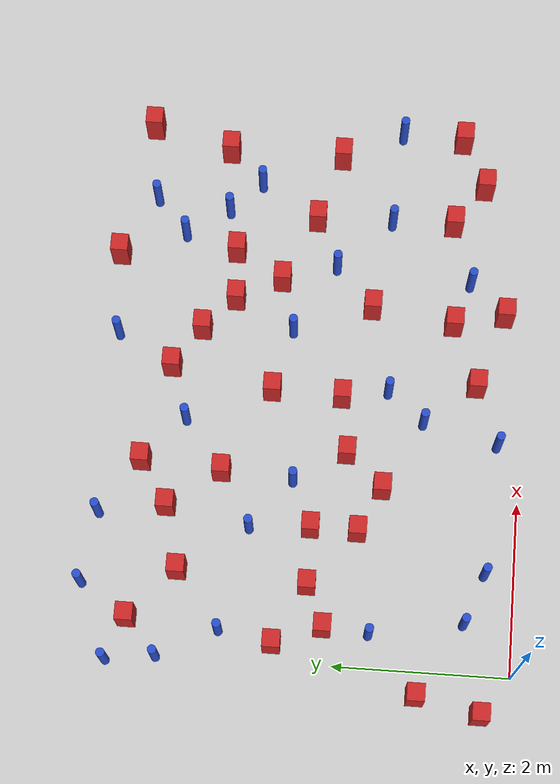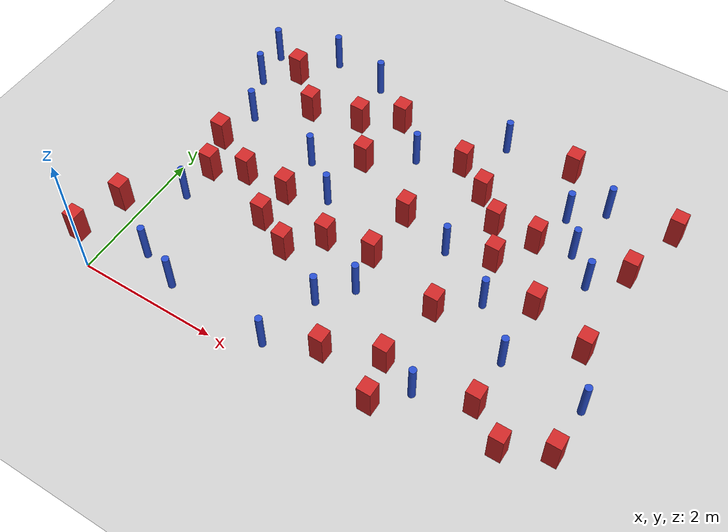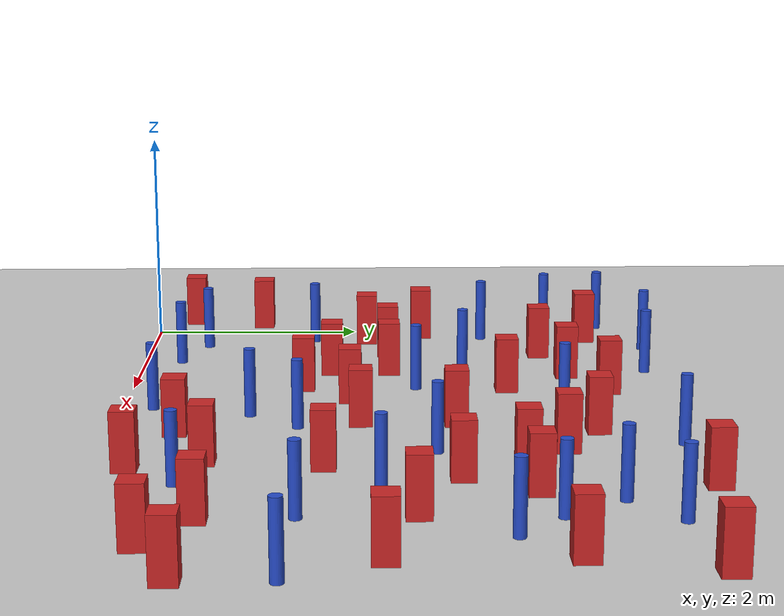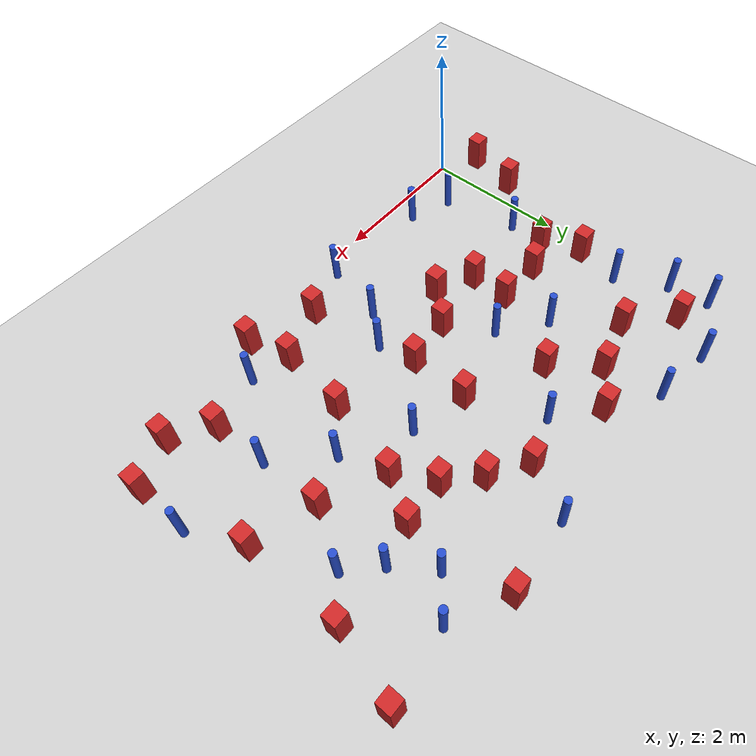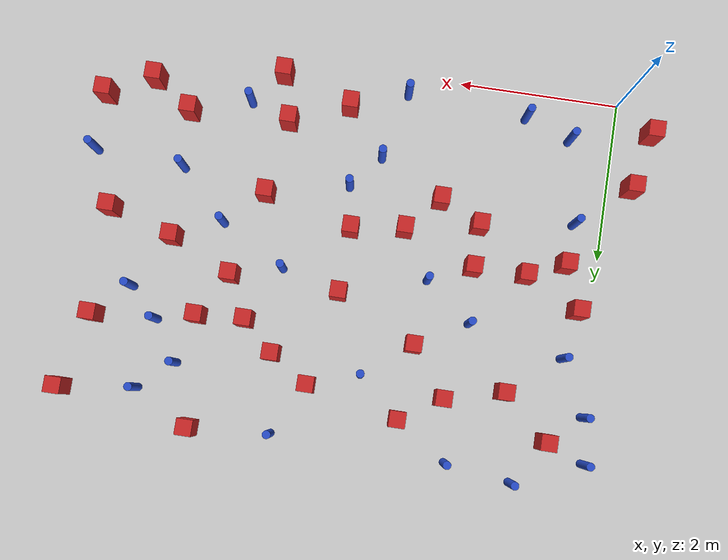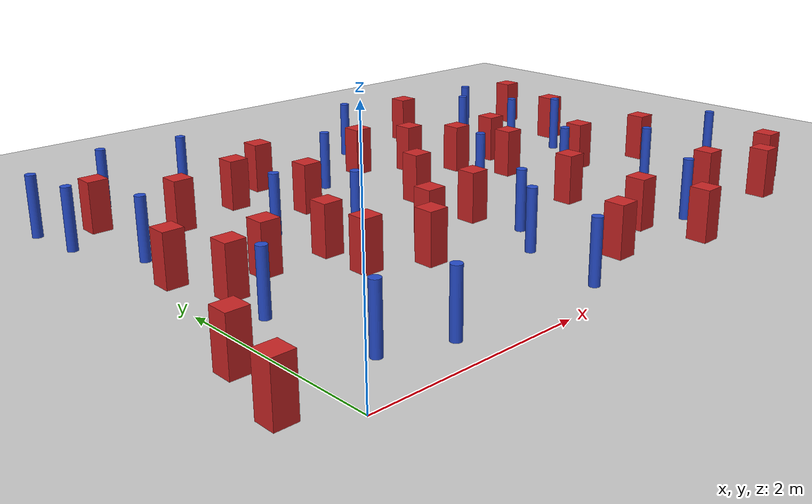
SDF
<sdf version="1.6">
 <world name="default">
  <model name="ground_plane">
   <static>1</static>
   <link name="link">
    <collision name="collision">
     <geometry><plane><normal>0 0 1</normal><size>100 100</size></plane></geometry>
     <surface><friction><ode><mu>100</mu><mu2>50</mu2></ode></friction></surface>
    </collision>
    <visual name="visual">
     <cast_shadows>0</cast_shadows>
     <geometry><plane><normal>0 0 1</normal><size>100 100</size></plane></geometry>
     <material>
      <ambient>1.0 1.0 1.0 1.0</ambient>
      <diffuse>0.8 0.8 0.8 1.0</diffuse>
      <specular>0.01 0.01 0.01 1.000000</specular>
     </material>
    </visual>
   </link>
  </model>
  <model name="square_post_obstacle5">
   <static>true</static>
   <pose>3.35381513687 4.06775234685 8.22691968438e-08 7.22125133819e-06 -7.54495500217e-07 2.29674213826e-05</pose>
   <link name="link">
    <pose>0 0 0.25 0 -0 0</pose>
    <inertial>
     <mass>100</mass>
     <inertia>
      <ixx>0.166667</ixx>
      <ixy>0</ixy>
      <ixz>0</ixz>
      <iyy>0.166667</iyy>
      <iyz>0</iyz>
      <izz>0.166667</izz>
     </inertia>
    </inertial>
    <collision name="collision"><geometry><box><size>.2 .2 .5</size></box></geometry></collision>
    <visual name="visual">
     <geometry><box><size>.2 .2 .5</size></box></geometry>
     <material>
      <script><name>Gazebo/Red</name><uri>file://media/materials/scripts/gazebo.material</uri></script>
     </material>
    </visual>
   </link>
  </model>
  <model name="pole_obstacle6">
   <static>true</static>
   <pose>1.13319620312 0.348081348117 2.88873142074e-08 -9.90536689733e-09 4.60219948992e-07 -1.20965994959e-07</pose>
   <link name="link">
    <pose>0 0 0.3 0 -0 0</pose>
    <inertial>
     <mass>1</mass>
     <inertia><ixx>0.145833</ixx><ixy>0</ixy><ixz>0</ixz><iyy>0.145833</iyy><iyz>0</iyz><izz>0.125</izz></inertia>
    </inertial>
    <collision name="collision">
     <geometry><cylinder><radius>0.05</radius><length>.6</length></cylinder></geometry>
    </collision>
    <visual name="visual">
     <geometry><cylinder><radius>0.05</radius><length>.6</length></cylinder></geometry>
     <material>
      <script><name>Gazebo/Blue</name><uri>file://media/materials/scripts/gazebo.material</uri></script>
     </material>
    </visual>
   </link>
  </model>
  <model name="square_post_obstacle9">
   <static>true</static>
   <pose>2.0536290855 1.55828655313 8.22691968438e-08 7.2212513382e-06 -7.54495500217e-07 2.29674213826e-05</pose>
   <link name="link">
    <pose>0 0 0.25 0 -0 0</pose>
    <inertial>
     <mass>100</mass>
     <inertia>
      <ixx>0.166667</ixx>
      <ixy>0</ixy>
      <ixz>0</ixz>
      <iyy>0.166667</iyy>
      <iyz>0</iyz>
      <izz>0.166667</izz>
     </inertia>
    </inertial>
    <collision name="collision"><geometry><box><size>.2 .2 .5</size></box></geometry></collision>
    <visual name="visual">
     <geometry><box><size>.2 .2 .5</size></box></geometry>
     <material>
      <script><name>Gazebo/Red</name><uri>file://media/materials/scripts/gazebo.material</uri></script>
     </material>
    </visual>
   </link>
  </model>
  <model name="square_post_obstacle15">
   <static>true</static>
   <pose>5.32238337618 0.8916731845 8.22691968438e-08 7.2212513382e-06 -7.54495500217e-07 2.29674213826e-05</pose>
   <link name="link">
    <pose>0 0 0.25 0 -0 0</pose>
    <inertial>
     <mass>100</mass>
     <inertia>
      <ixx>0.166667</ixx>
      <ixy>0</ixy>
      <ixz>0</ixz>
      <iyy>0.166667</iyy>
      <iyz>0</iyz>
      <izz>0.166667</izz>
     </inertia>
    </inertial>
    <collision name="collision"><geometry><box><size>.2 .2 .5</size></box></geometry></collision>
    <visual name="visual">
     <geometry><box><size>.2 .2 .5</size></box></geometry>
     <material>
      <script><name>Gazebo/Red</name><uri>file://media/materials/scripts/gazebo.material</uri></script>
     </material>
    </visual>
   </link>
  </model>
  <model name="pole_obstacle9">
   <static>true</static>
   <pose>6.42302813318 1.54928854973 2.88873142074e-08 -9.90536689445e-09 4.60219948999e-07 -1.20965994956e-07</pose>
   <link name="link">
    <pose>0 0 0.3 0 -0 0</pose>
    <inertial>
     <mass>1</mass>
     <inertia><ixx>0.145833</ixx><ixy>0</ixy><ixz>0</ixz><iyy>0.145833</iyy><iyz>0</iyz><izz>0.125</izz></inertia>
    </inertial>
    <collision name="collision">
     <geometry><cylinder><radius>0.05</radius><length>.6</length></cylinder></geometry>
    </collision>
    <visual name="visual">
     <geometry><cylinder><radius>0.05</radius><length>.6</length></cylinder></geometry>
     <material>
      <script><name>Gazebo/Blue</name><uri>file://media/materials/scripts/gazebo.material</uri></script>
     </material>
    </visual>
   </link>
  </model>
  <model name="square_post_obstacle20">
   <static>true</static>
   <pose>4.81783541929 3.42962507963 8.22691968438e-08 7.2212513382e-06 -7.54495500217e-07 2.29674213826e-05</pose>
   <link name="link">
    <pose>0 0 0.25 0 -0 0</pose>
    <inertial>
     <mass>100</mass>
     <inertia>
      <ixx>0.166667</ixx>
      <ixy>0</ixy>
      <ixz>0</ixz>
      <iyy>0.166667</iyy>
      <iyz>0</iyz>
      <izz>0.166667</izz>
     </inertia>
    </inertial>
    <collision name="collision"><geometry><box><size>.2 .2 .5</size></box></geometry></collision>
    <visual name="visual">
     <geometry><box><size>.2 .2 .5</size></box></geometry>
     <material>
      <script><name>Gazebo/Red</name><uri>file://media/materials/scripts/gazebo.material</uri></script>
     </material>
    </visual>
   </link>
  </model>
  <model name="pole_obstacle24">
   <static>true</static>
   <pose>5.4136950931 4.41460487003 2.88873142074e-08 -9.90536690842e-09 4.60219948965e-07 -1.20965994976e-07</pose>
   <link name="link">
    <pose>0 0 0.3 0 -0 0</pose>
    <inertial>
     <mass>1</mass>
     <inertia><ixx>0.145833</ixx><ixy>0</ixy><ixz>0</ixz><iyy>0.145833</iyy><iyz>0</iyz><izz>0.125</izz></inertia>
    </inertial>
    <collision name="collision">
     <geometry><cylinder><radius>0.05</radius><length>.6</length></cylinder></geometry>
    </collision>
    <visual name="visual">
     <geometry><cylinder><radius>0.05</radius><length>.6</length></cylinder></geometry>
     <material>
      <script><name>Gazebo/Blue</name><uri>file://media/materials/scripts/gazebo.material</uri></script>
     </material>
    </visual>
   </link>
  </model>
  <model name="square_post_obstacle33">
   <static>true</static>
   <pose>0.199342462068 2.68092679522 8.22691968438e-08 7.2212513382e-06 -7.54495500217e-07 2.29674213826e-05</pose>
   <link name="link">
    <pose>0 0 0.25 0 -0 0</pose>
    <inertial>
     <mass>100</mass>
     <inertia>
      <ixx>0.166667</ixx>
      <ixy>0</ixy>
      <ixz>0</ixz>
      <iyy>0.166667</iyy>
      <iyz>0</iyz>
      <izz>0.166667</izz>
     </inertia>
    </inertial>
    <collision name="collision"><geometry><box><size>.2 .2 .5</size></box></geometry></collision>
    <visual name="visual">
     <geometry><box><size>.2 .2 .5</size></box></geometry>
     <material>
      <script><name>Gazebo/Red</name><uri>file://media/materials/scripts/gazebo.material</uri></script>
     </material>
    </visual>
   </link>
  </model>
  <model name="pole_obstacle43">
   <static>true</static>
   <pose>-0.10576044568 4.52329469526 2.88873142074e-08 -9.90536689804e-09 4.6021994899e-07 -1.2096599496e-07</pose>
   <link name="link">
    <pose>0 0 0.3 0 -0 0</pose>
    <inertial>
     <mass>1</mass>
     <inertia><ixx>0.145833</ixx><ixy>0</ixy><ixz>0</ixz><iyy>0.145833</iyy><iyz>0</iyz><izz>0.125</izz></inertia>
    </inertial>
    <collision name="collision">
     <geometry><cylinder><radius>0.05</radius><length>.6</length></cylinder></geometry>
    </collision>
    <visual name="visual">
     <geometry><cylinder><radius>0.05</radius><length>.6</length></cylinder></geometry>
     <material>
      <script><name>Gazebo/Blue</name><uri>file://media/materials/scripts/gazebo.material</uri></script>
     </material>
    </visual>
   </link>
  </model>
  <model name="square_post_obstacle47">
   <static>true</static>
   <pose>4.2245207431 0.24566371275 8.22691968438e-08 7.2212513382e-06 -7.54495500217e-07 2.29674213826e-05</pose>
   <link name="link">
    <pose>0 0 0.25 0 -0 0</pose>
    <inertial>
     <mass>100</mass>
     <inertia>
      <ixx>0.166667</ixx>
      <ixy>0</ixy>
      <ixz>0</ixz>
      <iyy>0.166667</iyy>
      <iyz>0</iyz>
      <izz>0.166667</izz>
     </inertia>
    </inertial>
    <collision name="collision"><geometry><box><size>.2 .2 .5</size></box></geometry></collision>
    <visual name="visual">
     <geometry><box><size>.2 .2 .5</size></box></geometry>
     <material>
      <script><name>Gazebo/Red</name><uri>file://media/materials/scripts/gazebo.material</uri></script>
     </material>
    </visual>
   </link>
  </model>
  <model name="square_post_obstacle48">
   <static>true</static>
   <pose>-0.275603188666 1.05925205157 8.22691968438e-08 7.2212513382e-06 -7.54495500217e-07 2.29674213826e-05</pose>
   <link name="link">
    <pose>0 0 0.25 0 -0 0</pose>
    <inertial>
     <mass>100</mass>
     <inertia>
      <ixx>0.166667</ixx>
      <ixy>0</ixy>
      <ixz>0</ixz>
      <iyy>0.166667</iyy>
      <iyz>0</iyz>
      <izz>0.166667</izz>
     </inertia>
    </inertial>
    <collision name="collision"><geometry><box><size>.2 .2 .5</size></box></geometry></collision>
    <visual name="visual">
     <geometry><box><size>.2 .2 .5</size></box></geometry>
     <material>
      <script><name>Gazebo/Red</name><uri>file://media/materials/scripts/gazebo.material</uri></script>
     </material>
    </visual>
   </link>
  </model>
  <model name="square_post_obstacle62">
   <static>true</static>
   <pose>0.417937570312 2.13169467309 8.22691968438e-08 7.22125133819e-06 -7.54495500217e-07 2.29674213826e-05</pose>
   <link name="link">
    <pose>0 0 0.25 0 -0 0</pose>
    <inertial>
     <mass>100</mass>
     <inertia>
      <ixx>0.166667</ixx>
      <ixy>0</ixy>
      <ixz>0</ixz>
      <iyy>0.166667</iyy>
      <iyz>0</iyz>
      <izz>0.166667</izz>
     </inertia>
    </inertial>
    <collision name="collision"><geometry><box><size>.2 .2 .5</size></box></geometry></collision>
    <visual name="visual">
     <geometry><box><size>.2 .2 .5</size></box></geometry>
     <material>
      <script><name>Gazebo/Red</name><uri>file://media/materials/scripts/gazebo.material</uri></script>
     </material>
    </visual>
   </link>
  </model>
  <model name="pole_obstacle62">
   <static>true</static>
   <pose>2.8563226015 1.12617511428 2.88873142074e-08 -9.90536689395e-09 4.60219949e-07 -1.20965994953e-07</pose>
   <link name="link">
    <pose>0 0 0.3 0 -0 0</pose>
    <inertial>
     <mass>1</mass>
     <inertia><ixx>0.145833</ixx><ixy>0</ixy><ixz>0</ixz><iyy>0.145833</iyy><iyz>0</iyz><izz>0.125</izz></inertia>
    </inertial>
    <collision name="collision">
     <geometry><cylinder><radius>0.05</radius><length>.6</length></cylinder></geometry>
    </collision>
    <visual name="visual">
     <geometry><cylinder><radius>0.05</radius><length>.6</length></cylinder></geometry>
     <material>
      <script><name>Gazebo/Blue</name><uri>file://media/materials/scripts/gazebo.material</uri></script>
     </material>
    </visual>
   </link>
  </model>
  <model name="pole_obstacle64">
   <static>true</static>
   <pose>4.58681860581 0.659912806911 2.88873142074e-08 -9.90536689837e-09 4.60219948989e-07 -1.2096599496e-07</pose>
   <link name="link">
    <pose>0 0 0.3 0 -0 0</pose>
    <inertial>
     <mass>1</mass>
     <inertia><ixx>0.145833</ixx><ixy>0</ixy><ixz>0</ixz><iyy>0.145833</iyy><iyz>0</iyz><izz>0.125</izz></inertia>
    </inertial>
    <collision name="collision">
     <geometry><cylinder><radius>0.05</radius><length>.6</length></cylinder></geometry>
    </collision>
    <visual name="visual">
     <geometry><cylinder><radius>0.05</radius><length>.6</length></cylinder></geometry>
     <material>
      <script><name>Gazebo/Blue</name><uri>file://media/materials/scripts/gazebo.material</uri></script>
     </material>
    </visual>
   </link>
  </model>
  <model name="pole_obstacle65">
   <static>true</static>
   <pose>4.69014300524 2.23821791497 2.88873142074e-08 -9.90536690245e-09 4.6021994898e-07 -1.20965994966e-07</pose>
   <link name="link">
    <pose>0 0 0.3 0 -0 0</pose>
    <inertial>
     <mass>1</mass>
     <inertia><ixx>0.145833</ixx><ixy>0</ixy><ixz>0</ixz><iyy>0.145833</iyy><iyz>0</iyz><izz>0.125</izz></inertia>
    </inertial>
    <collision name="collision">
     <geometry><cylinder><radius>0.05</radius><length>.6</length></cylinder></geometry>
    </collision>
    <visual name="visual">
     <geometry><cylinder><radius>0.05</radius><length>.6</length></cylinder></geometry>
     <material>
      <script><name>Gazebo/Blue</name><uri>file://media/materials/scripts/gazebo.material</uri></script>
     </material>
    </visual>
   </link>
  </model>
  <model name="square_post_obstacle68">
   <static>true</static>
   <pose>4.07500601665 0.836255572172 8.22691968438e-08 7.2212513382e-06 -7.54495500217e-07 2.29674213826e-05</pose>
   <link name="link">
    <pose>0 0 0.25 0 -0 0</pose>
    <inertial>
     <mass>100</mass>
     <inertia>
      <ixx>0.166667</ixx>
      <ixy>0</ixy>
      <ixz>0</ixz>
      <iyy>0.166667</iyy>
      <iyz>0</iyz>
      <izz>0.166667</izz>
     </inertia>
    </inertial>
    <collision name="collision"><geometry><box><size>.2 .2 .5</size></box></geometry></collision>
    <visual name="visual">
     <geometry><box><size>.2 .2 .5</size></box></geometry>
     <material>
      <script><name>Gazebo/Red</name><uri>file://media/materials/scripts/gazebo.material</uri></script>
     </material>
    </visual>
   </link>
  </model>
  <model name="pole_obstacle69">
   <static>true</static>
   <pose>2.07374198753 2.57670208265 2.88873142074e-08 -9.90536690232e-09 4.6021994898e-07 -1.20965994968e-07</pose>
   <link name="link">
    <pose>0 0 0.3 0 -0 0</pose>
    <inertial>
     <mass>1</mass>
     <inertia><ixx>0.145833</ixx><ixy>0</ixy><ixz>0</ixz><iyy>0.145833</iyy><iyz>0</iyz><izz>0.125</izz></inertia>
    </inertial>
    <collision name="collision">
     <geometry><cylinder><radius>0.05</radius><length>.6</length></cylinder></geometry>
    </collision>
    <visual name="visual">
     <geometry><cylinder><radius>0.05</radius><length>.6</length></cylinder></geometry>
     <material>
      <script><name>Gazebo/Blue</name><uri>file://media/materials/scripts/gazebo.material</uri></script>
     </material>
    </visual>
   </link>
  </model>
  <model name="square_post_obstacle76">
   <static>true</static>
   <pose>0.384983445926 4.32455251216 8.22691968438e-08 7.22125133819e-06 -7.54495500217e-07 2.29674213826e-05</pose>
   <link name="link">
    <pose>0 0 0.25 0 -0 0</pose>
    <inertial>
     <mass>100</mass>
     <inertia>
      <ixx>0.166667</ixx>
      <ixy>0</ixy>
      <ixz>0</ixz>
      <iyy>0.166667</iyy>
      <iyz>0</iyz>
      <izz>0.166667</izz>
     </inertia>
    </inertial>
    <collision name="collision"><geometry><box><size>.2 .2 .5</size></box></geometry></collision>
    <visual name="visual">
     <geometry><box><size>.2 .2 .5</size></box></geometry>
     <material>
      <script><name>Gazebo/Red</name><uri>file://media/materials/scripts/gazebo.material</uri></script>
     </material>
    </visual>
   </link>
  </model>
  <model name="pole_obstacle80">
   <static>true</static>
   <pose>0.30487829085 3.28983109692 2.88873142074e-08 -9.90536689663e-09 4.60219948993e-07 -1.20965994959e-07</pose>
   <link name="link">
    <pose>0 0 0.3 0 -0 0</pose>
    <inertial>
     <mass>1</mass>
     <inertia><ixx>0.145833</ixx><ixy>0</ixy><ixz>0</ixz><iyy>0.145833</iyy><iyz>0</iyz><izz>0.125</izz></inertia>
    </inertial>
    <collision name="collision">
     <geometry><cylinder><radius>0.05</radius><length>.6</length></cylinder></geometry>
    </collision>
    <visual name="visual">
     <geometry><cylinder><radius>0.05</radius><length>.6</length></cylinder></geometry>
     <material>
      <script><name>Gazebo/Blue</name><uri>file://media/materials/scripts/gazebo.material</uri></script>
     </material>
    </visual>
   </link>
  </model>
  <model name="pole_obstacle85">
   <static>true</static>
   <pose>1.4938314433 3.03403903891 2.88873142074e-08 -9.90536689791e-09 4.6021994899e-07 -1.20965994959e-07</pose>
   <link name="link">
    <pose>0 0 0.3 0 -0 0</pose>
    <inertial>
     <mass>1</mass>
     <inertia><ixx>0.145833</ixx><ixy>0</ixy><ixz>0</ixz><iyy>0.145833</iyy><iyz>0</iyz><izz>0.125</izz></inertia>
    </inertial>
    <collision name="collision">
     <geometry><cylinder><radius>0.05</radius><length>.6</length></cylinder></geometry>
    </collision>
    <visual name="visual">
     <geometry><cylinder><radius>0.05</radius><length>.6</length></cylinder></geometry>
     <material>
      <script><name>Gazebo/Blue</name><uri>file://media/materials/scripts/gazebo.material</uri></script>
     </material>
    </visual>
   </link>
  </model>
  <model name="pole_obstacle93">
   <static>true</static>
   <pose>2.72200615313 3.85356774426 2.88873142074e-08 -9.90536690232e-09 4.6021994898e-07 -1.20965994968e-07</pose>
   <link name="link">
    <pose>0 0 0.3 0 -0 0</pose>
    <inertial>
     <mass>1</mass>
     <inertia><ixx>0.145833</ixx><ixy>0</ixy><ixz>0</ixz><iyy>0.145833</iyy><iyz>0</iyz><izz>0.125</izz></inertia>
    </inertial>
    <collision name="collision">
     <geometry><cylinder><radius>0.05</radius><length>.6</length></cylinder></geometry>
    </collision>
    <visual name="visual">
     <geometry><cylinder><radius>0.05</radius><length>.6</length></cylinder></geometry>
     <material>
      <script><name>Gazebo/Blue</name><uri>file://media/materials/scripts/gazebo.material</uri></script>
     </material>
    </visual>
   </link>
  </model>
  <model name="square_post_obstacle87">
   <static>true</static>
   <pose>3.3423848403 0.536654275949 8.22691968438e-08 7.2212513382e-06 -7.54495500217e-07 2.29674213826e-05</pose>
   <link name="link">
    <pose>0 0 0.25 0 -0 0</pose>
    <inertial>
     <mass>100</mass>
     <inertia>
      <ixx>0.166667</ixx>
      <ixy>0</ixy>
      <ixz>0</ixz>
      <iyy>0.166667</iyy>
      <iyz>0</iyz>
      <izz>0.166667</izz>
     </inertia>
    </inertial>
    <collision name="collision"><geometry><box><size>.2 .2 .5</size></box></geometry></collision>
    <visual name="visual">
     <geometry><box><size>.2 .2 .5</size></box></geometry>
     <material>
      <script><name>Gazebo/Red</name><uri>file://media/materials/scripts/gazebo.material</uri></script>
     </material>
    </visual>
   </link>
  </model>
  <model name="square_post_obstacle90">
   <static>true</static>
   <pose>1.5457331632 2.33940620376 8.22691968438e-08 7.2212513382e-06 -7.54495500217e-07 2.29674213826e-05</pose>
   <link name="link">
    <pose>0 0 0.25 0 -0 0</pose>
    <inertial>
     <mass>100</mass>
     <inertia>
      <ixx>0.166667</ixx>
      <ixy>0</ixy>
      <ixz>0</ixz>
      <iyy>0.166667</iyy>
      <iyz>0</iyz>
      <izz>0.166667</izz>
     </inertia>
    </inertial>
    <collision name="collision"><geometry><box><size>.2 .2 .5</size></box></geometry></collision>
    <visual name="visual">
     <geometry><box><size>.2 .2 .5</size></box></geometry>
     <material>
      <script><name>Gazebo/Red</name><uri>file://media/materials/scripts/gazebo.material</uri></script>
     </material>
    </visual>
   </link>
  </model>
  <model name="pole_obstacle102">
   <static>true</static>
   <pose>3.7066592578 4.72391932206 2.88873142074e-08 -9.90536689859e-09 4.60219948989e-07 -1.20965994961e-07</pose>
   <link name="link">
    <pose>0 0 0.3 0 -0 0</pose>
    <inertial>
     <mass>1</mass>
     <inertia><ixx>0.145833</ixx><ixy>0</ixy><ixz>0</ixz><iyy>0.145833</iyy><iyz>0</iyz><izz>0.125</izz></inertia>
    </inertial>
    <collision name="collision">
     <geometry><cylinder><radius>0.05</radius><length>.6</length></cylinder></geometry>
    </collision>
    <visual name="visual">
     <geometry><cylinder><radius>0.05</radius><length>.6</length></cylinder></geometry>
     <material>
      <script><name>Gazebo/Blue</name><uri>file://media/materials/scripts/gazebo.material</uri></script>
     </material>
    </visual>
   </link>
  </model>
  <model name="square_post_obstacle100">
   <static>true</static>
   <pose>4.49121840122 2.86906805679 8.22691968438e-08 7.2212513382e-06 -7.54495500217e-07 2.29674213826e-05</pose>
   <link name="link">
    <pose>0 0 0.25 0 -0 0</pose>
    <inertial>
     <mass>100</mass>
     <inertia>
      <ixx>0.166667</ixx>
      <ixy>0</ixy>
      <ixz>0</ixz>
      <iyy>0.166667</iyy>
      <iyz>0</iyz>
      <izz>0.166667</izz>
     </inertia>
    </inertial>
    <collision name="collision"><geometry><box><size>.2 .2 .5</size></box></geometry></collision>
    <visual name="visual">
     <geometry><box><size>.2 .2 .5</size></box></geometry>
     <material>
      <script><name>Gazebo/Red</name><uri>file://media/materials/scripts/gazebo.material</uri></script>
     </material>
    </visual>
   </link>
  </model>
  <model name="pole_obstacle126">
   <static>true</static>
   <pose>5.29722136769 1.61873149007 2.88873142074e-08 -9.90536689445e-09 4.60219948999e-07 -1.20965994956e-07</pose>
   <link name="link">
    <pose>0 0 0.3 0 -0 0</pose>
    <inertial>
     <mass>1</mass>
     <inertia><ixx>0.145833</ixx><ixy>0</ixy><ixz>0</ixz><iyy>0.145833</iyy><iyz>0</iyz><izz>0.125</izz></inertia>
    </inertial>
    <collision name="collision">
     <geometry><cylinder><radius>0.05</radius><length>.6</length></cylinder></geometry>
    </collision>
    <visual name="visual">
     <geometry><cylinder><radius>0.05</radius><length>.6</length></cylinder></geometry>
     <material>
      <script><name>Gazebo/Blue</name><uri>file://media/materials/scripts/gazebo.material</uri></script>
     </material>
    </visual>
   </link>
  </model>
  <model name="pole_obstacle132">
   <static>true</static>
   <pose>0.7418504088 4.87293311592 2.88873142074e-08 -9.90536689661e-09 4.60219948993e-07 -1.20965994957e-07</pose>
   <link name="link">
    <pose>0 0 0.3 0 -0 0</pose>
    <inertial>
     <mass>1</mass>
     <inertia><ixx>0.145833</ixx><ixy>0</ixy><ixz>0</ixz><iyy>0.145833</iyy><iyz>0</iyz><izz>0.125</izz></inertia>
    </inertial>
    <collision name="collision">
     <geometry><cylinder><radius>0.05</radius><length>.6</length></cylinder></geometry>
    </collision>
    <visual name="visual">
     <geometry><cylinder><radius>0.05</radius><length>.6</length></cylinder></geometry>
     <material>
      <script><name>Gazebo/Blue</name><uri>file://media/materials/scripts/gazebo.material</uri></script>
     </material>
    </visual>
   </link>
  </model>
  <model name="square_post_obstacle116">
   <static>true</static>
   <pose>3.13698286242 2.88907721896 8.22691968438e-08 7.2212513382e-06 -7.54495500217e-07 2.29674213826e-05</pose>
   <link name="link">
    <pose>0 0 0.25 0 -0 0</pose>
    <inertial>
     <mass>100</mass>
     <inertia>
      <ixx>0.166667</ixx>
      <ixy>0</ixy>
      <ixz>0</ixz>
      <iyy>0.166667</iyy>
      <iyz>0</iyz>
      <izz>0.166667</izz>
     </inertia>
    </inertial>
    <collision name="collision"><geometry><box><size>.2 .2 .5</size></box></geometry></collision>
    <visual name="visual">
     <geometry><box><size>.2 .2 .5</size></box></geometry>
     <material>
      <script><name>Gazebo/Red</name><uri>file://media/materials/scripts/gazebo.material</uri></script>
     </material>
    </visual>
   </link>
  </model>
  <model name="pole_obstacle137">
   <static>true</static>
   <pose>0.557376625921 0.556058679591 2.88873142074e-08 -9.90536689967e-09 4.60219948986e-07 -1.20965994963e-07</pose>
   <link name="link">
    <pose>0 0 0.3 0 -0 0</pose>
    <inertial>
     <mass>1</mass>
     <inertia><ixx>0.145833</ixx><ixy>0</ixy><ixz>0</ixz><iyy>0.145833</iyy><iyz>0</iyz><izz>0.125</izz></inertia>
    </inertial>
    <collision name="collision">
     <geometry><cylinder><radius>0.05</radius><length>.6</length></cylinder></geometry>
    </collision>
    <visual name="visual">
     <geometry><cylinder><radius>0.05</radius><length>.6</length></cylinder></geometry>
     <material>
      <script><name>Gazebo/Blue</name><uri>file://media/materials/scripts/gazebo.material</uri></script>
     </material>
    </visual>
   </link>
  </model>
  <model name="square_post_obstacle119">
   <static>true</static>
   <pose>0.962461030931 3.80421623771 8.22691968438e-08 7.2212513382e-06 -7.54495500217e-07 2.29674213826e-05</pose>
   <link name="link">
    <pose>0 0 0.25 0 -0 0</pose>
    <inertial>
     <mass>100</mass>
     <inertia>
      <ixx>0.166667</ixx>
      <ixy>0</ixy>
      <ixz>0</ixz>
      <iyy>0.166667</iyy>
      <iyz>0</iyz>
      <izz>0.166667</izz>
     </inertia>
    </inertial>
    <collision name="collision"><geometry><box><size>.2 .2 .5</size></box></geometry></collision>
    <visual name="visual">
     <geometry><box><size>.2 .2 .5</size></box></geometry>
     <material>
      <script><name>Gazebo/Red</name><uri>file://media/materials/scripts/gazebo.material</uri></script>
     </material>
    </visual>
   </link>
  </model>
  <model name="pole_obstacle144">
   <static>true</static>
   <pose>5.6824701546 3.19067832484 2.88873142074e-08 -9.90536690245e-09 4.6021994898e-07 -1.20965994966e-07</pose>
   <link name="link">
    <pose>0 0 0.3 0 -0 0</pose>
    <inertial>
     <mass>1</mass>
     <inertia><ixx>0.145833</ixx><ixy>0</ixy><ixz>0</ixz><iyy>0.145833</iyy><iyz>0</iyz><izz>0.125</izz></inertia>
    </inertial>
    <collision name="collision">
     <geometry><cylinder><radius>0.05</radius><length>.6</length></cylinder></geometry>
    </collision>
    <visual name="visual">
     <geometry><cylinder><radius>0.05</radius><length>.6</length></cylinder></geometry>
     <material>
      <script><name>Gazebo/Blue</name><uri>file://media/materials/scripts/gazebo.material</uri></script>
     </material>
    </visual>
   </link>
  </model>
  <model name="square_post_obstacle134">
   <static>true</static>
   <pose>3.83330171879 3.75295160468 8.22691968438e-08 7.2212513382e-06 -7.54495500217e-07 2.29674213826e-05</pose>
   <link name="link">
    <pose>0 0 0.25 0 -0 0</pose>
    <inertial>
     <mass>100</mass>
     <inertia>
      <ixx>0.166667</ixx>
      <ixy>0</ixy>
      <ixz>0</ixz>
      <iyy>0.166667</iyy>
      <iyz>0</iyz>
      <izz>0.166667</izz>
     </inertia>
    </inertial>
    <collision name="collision"><geometry><box><size>.2 .2 .5</size></box></geometry></collision>
    <visual name="visual">
     <geometry><box><size>.2 .2 .5</size></box></geometry>
     <material>
      <script><name>Gazebo/Red</name><uri>file://media/materials/scripts/gazebo.material</uri></script>
     </material>
    </visual>
   </link>
  </model>
  <model name="square_post_obstacle135">
   <static>true</static>
   <pose>6.40126803594 0.825487682695 8.22691968438e-08 7.2212513382e-06 -7.54495500217e-07 2.29674213826e-05</pose>
   <link name="link">
    <pose>0 0 0.25 0 -0 0</pose>
    <inertial>
     <mass>100</mass>
     <inertia>
      <ixx>0.166667</ixx>
      <ixy>0</ixy>
      <ixz>0</ixz>
      <iyy>0.166667</iyy>
      <iyz>0</iyz>
      <izz>0.166667</izz>
     </inertia>
    </inertial>
    <collision name="collision"><geometry><box><size>.2 .2 .5</size></box></geometry></collision>
    <visual name="visual">
     <geometry><box><size>.2 .2 .5</size></box></geometry>
     <material>
      <script><name>Gazebo/Red</name><uri>file://media/materials/scripts/gazebo.material</uri></script>
     </material>
    </visual>
   </link>
  </model>
  <model name="pole_obstacle145">
   <static>true</static>
   <pose>4.9877809169 4.04566708438 2.88873142074e-08 -9.90536690763e-09 4.60219948967e-07 -1.20965994975e-07</pose>
   <link name="link">
    <pose>0 0 0.3 0 -0 0</pose>
    <inertial>
     <mass>1</mass>
     <inertia><ixx>0.145833</ixx><ixy>0</ixy><ixz>0</ixz><iyy>0.145833</iyy><iyz>0</iyz><izz>0.125</izz></inertia>
    </inertial>
    <collision name="collision">
     <geometry><cylinder><radius>0.05</radius><length>.6</length></cylinder></geometry>
    </collision>
    <visual name="visual">
     <geometry><cylinder><radius>0.05</radius><length>.6</length></cylinder></geometry>
     <material>
      <script><name>Gazebo/Blue</name><uri>file://media/materials/scripts/gazebo.material</uri></script>
     </material>
    </visual>
   </link>
  </model>
  <model name="pole_obstacle146">
   <static>true</static>
   <pose>0.369820935793 1.61213676967 2.88873142074e-08 -9.90536689905e-09 4.60219948988e-07 -1.2096599496e-07</pose>
   <link name="link">
    <pose>0 0 0.3 0 -0 0</pose>
    <inertial>
     <mass>1</mass>
     <inertia><ixx>0.145833</ixx><ixy>0</ixy><ixz>0</ixz><iyy>0.145833</iyy><iyz>0</iyz><izz>0.125</izz></inertia>
    </inertial>
    <collision name="collision">
     <geometry><cylinder><radius>0.05</radius><length>.6</length></cylinder></geometry>
    </collision>
    <visual name="visual">
     <geometry><cylinder><radius>0.05</radius><length>.6</length></cylinder></geometry>
     <material>
      <script><name>Gazebo/Blue</name><uri>file://media/materials/scripts/gazebo.material</uri></script>
     </material>
    </visual>
   </link>
  </model>
  <model name="square_post_obstacle138">
   <static>true</static>
   <pose>3.10912773734 2.0793787166 8.22691968438e-08 7.2212513382e-06 -7.54495500217e-07 2.29674213826e-05</pose>
   <link name="link">
    <pose>0 0 0.25 0 -0 0</pose>
    <inertial>
     <mass>100</mass>
     <inertia>
      <ixx>0.166667</ixx>
      <ixy>0</ixy>
      <ixz>0</ixz>
      <iyy>0.166667</iyy>
      <iyz>0</iyz>
      <izz>0.166667</izz>
     </inertia>
    </inertial>
    <collision name="collision"><geometry><box><size>.2 .2 .5</size></box></geometry></collision>
    <visual name="visual">
     <geometry><box><size>.2 .2 .5</size></box></geometry>
     <material>
      <script><name>Gazebo/Red</name><uri>file://media/materials/scripts/gazebo.material</uri></script>
     </material>
    </visual>
   </link>
  </model>
  <model name="pole_obstacle149">
   <static>true</static>
   <pose>-0.0333330341084 3.96475460416 2.88873142074e-08 -9.90536689675e-09 4.60219948993e-07 -1.20965994957e-07</pose>
   <link name="link">
    <pose>0 0 0.3 0 -0 0</pose>
    <inertial>
     <mass>1</mass>
     <inertia><ixx>0.145833</ixx><ixy>0</ixy><ixz>0</ixz><iyy>0.145833</iyy><iyz>0</iyz><izz>0.125</izz></inertia>
    </inertial>
    <collision name="collision">
     <geometry><cylinder><radius>0.05</radius><length>.6</length></cylinder></geometry>
    </collision>
    <visual name="visual">
     <geometry><cylinder><radius>0.05</radius><length>.6</length></cylinder></geometry>
     <material>
      <script><name>Gazebo/Blue</name><uri>file://media/materials/scripts/gazebo.material</uri></script>
     </material>
    </visual>
   </link>
  </model>
  <model name="pole_obstacle165">
   <static>true</static>
   <pose>1.55859092902 4.75708519045 2.88873142074e-08 -9.90536689852e-09 4.60219948989e-07 -1.2096599496e-07</pose>
   <link name="link">
    <pose>0 0 0.3 0 -0 0</pose>
    <inertial>
     <mass>1</mass>
     <inertia><ixx>0.145833</ixx><ixy>0</ixy><ixz>0</ixz><iyy>0.145833</iyy><iyz>0</iyz><izz>0.125</izz></inertia>
    </inertial>
    <collision name="collision">
     <geometry><cylinder><radius>0.05</radius><length>.6</length></cylinder></geometry>
    </collision>
    <visual name="visual">
     <geometry><cylinder><radius>0.05</radius><length>.6</length></cylinder></geometry>
     <material>
      <script><name>Gazebo/Blue</name><uri>file://media/materials/scripts/gazebo.material</uri></script>
     </material>
    </visual>
   </link>
  </model>
  <model name="pole_obstacle168">
   <static>true</static>
   <pose>5.31700118099 3.55101367908 2.88873142074e-08 -9.90536690245e-09 4.6021994898e-07 -1.20965994966e-07</pose>
   <link name="link">
    <pose>0 0 0.3 0 -0 0</pose>
    <inertial>
     <mass>1</mass>
     <inertia><ixx>0.145833</ixx><ixy>0</ixy><ixz>0</ixz><iyy>0.145833</iyy><iyz>0</iyz><izz>0.125</izz></inertia>
    </inertial>
    <collision name="collision">
     <geometry><cylinder><radius>0.05</radius><length>.6</length></cylinder></geometry>
    </collision>
    <visual name="visual">
     <geometry><cylinder><radius>0.05</radius><length>.6</length></cylinder></geometry>
     <material>
      <script><name>Gazebo/Blue</name><uri>file://media/materials/scripts/gazebo.material</uri></script>
     </material>
    </visual>
   </link>
  </model>
  <model name="square_post_obstacle161">
   <static>true</static>
   <pose>6.0948367378 2.25718397912 8.22691968438e-08 7.2212513382e-06 -7.54495500217e-07 2.29674213826e-05</pose>
   <link name="link">
    <pose>0 0 0.25 0 -0 0</pose>
    <inertial>
     <mass>100</mass>
     <inertia>
      <ixx>0.166667</ixx>
      <ixy>0</ixy>
      <ixz>0</ixz>
      <iyy>0.166667</iyy>
      <iyz>0</iyz>
      <izz>0.166667</izz>
     </inertia>
    </inertial>
    <collision name="collision"><geometry><box><size>.2 .2 .5</size></box></geometry></collision>
    <visual name="visual">
     <geometry><box><size>.2 .2 .5</size></box></geometry>
     <material>
      <script><name>Gazebo/Red</name><uri>file://media/materials/scripts/gazebo.material</uri></script>
     </material>
    </visual>
   </link>
  </model>
  <model name="square_post_obstacle166">
   <static>true</static>
   <pose>2.13633732515 3.39663630465 8.22691968438e-08 7.2212513382e-06 -7.54495500217e-07 2.29674213826e-05</pose>
   <link name="link">
    <pose>0 0 0.25 0 -0 0</pose>
    <inertial>
     <mass>100</mass>
     <inertia>
      <ixx>0.166667</ixx>
      <ixy>0</ixy>
      <ixz>0</ixz>
      <iyy>0.166667</iyy>
      <iyz>0</iyz>
      <izz>0.166667</izz>
     </inertia>
    </inertial>
    <collision name="collision"><geometry><box><size>.2 .2 .5</size></box></geometry></collision>
    <visual name="visual">
     <geometry><box><size>.2 .2 .5</size></box></geometry>
     <material>
      <script><name>Gazebo/Red</name><uri>file://media/materials/scripts/gazebo.material</uri></script>
     </material>
    </visual>
   </link>
  </model>
  <model name="square_post_obstacle168">
   <static>true</static>
   <pose>1.53748667136 1.8057721411 8.22691968438e-08 7.2212513382e-06 -7.54495500217e-07 2.29674213826e-05</pose>
   <link name="link">
    <pose>0 0 0.25 0 -0 0</pose>
    <inertial>
     <mass>100</mass>
     <inertia>
      <ixx>0.166667</ixx>
      <ixy>0</ixy>
      <ixz>0</ixz>
      <iyy>0.166667</iyy>
      <iyz>0</iyz>
      <izz>0.166667</izz>
     </inertia>
    </inertial>
    <collision name="collision"><geometry><box><size>.2 .2 .5</size></box></geometry></collision>
    <visual name="visual">
     <geometry><box><size>.2 .2 .5</size></box></geometry>
     <material>
      <script><name>Gazebo/Red</name><uri>file://media/materials/scripts/gazebo.material</uri></script>
     </material>
    </visual>
   </link>
  </model>
  <model name="pole_obstacle178">
   <static>true</static>
   <pose>2.64458291054 0.264362522966 2.88873142074e-08 -9.90536689488e-09 4.60219948997e-07 -1.20965994956e-07</pose>
   <link name="link">
    <pose>0 0 0.3 0 -0 0</pose>
    <inertial>
     <mass>1</mass>
     <inertia><ixx>0.145833</ixx><ixy>0</ixy><ixz>0</ixz><iyy>0.145833</iyy><iyz>0</iyz><izz>0.125</izz></inertia>
    </inertial>
    <collision name="collision">
     <geometry><cylinder><radius>0.05</radius><length>.6</length></cylinder></geometry>
    </collision>
    <visual name="visual">
     <geometry><cylinder><radius>0.05</radius><length>.6</length></cylinder></geometry>
     <material>
      <script><name>Gazebo/Blue</name><uri>file://media/materials/scripts/gazebo.material</uri></script>
     </material>
    </visual>
   </link>
  </model>
  <model name="square_post_obstacle175">
   <static>true</static>
   <pose>6.08888105036 3.59627113584 8.22691968438e-08 7.2212513382e-06 -7.54495500217e-07 2.29674213826e-05</pose>
   <link name="link">
    <pose>0 0 0.25 0 -0 0</pose>
    <inertial>
     <mass>100</mass>
     <inertia>
      <ixx>0.166667</ixx>
      <ixy>0</ixy>
      <ixz>0</ixz>
      <iyy>0.166667</iyy>
      <iyz>0</iyz>
      <izz>0.166667</izz>
     </inertia>
    </inertial>
    <collision name="collision"><geometry><box><size>.2 .2 .5</size></box></geometry></collision>
    <visual name="visual">
     <geometry><box><size>.2 .2 .5</size></box></geometry>
     <material>
      <script><name>Gazebo/Red</name><uri>file://media/materials/scripts/gazebo.material</uri></script>
     </material>
    </visual>
   </link>
  </model>
  <model name="square_post_obstacle176">
   <static>true</static>
   <pose>2.44505968708 1.98377784121 8.22691968438e-08 7.2212513382e-06 -7.54495500217e-07 2.29674213826e-05</pose>
   <link name="link">
    <pose>0 0 0.25 0 -0 0</pose>
    <inertial>
     <mass>100</mass>
     <inertia>
      <ixx>0.166667</ixx>
      <ixy>0</ixy>
      <ixz>0</ixz>
      <iyy>0.166667</iyy>
      <iyz>0</iyz>
      <izz>0.166667</izz>
     </inertia>
    </inertial>
    <collision name="collision"><geometry><box><size>.2 .2 .5</size></box></geometry></collision>
    <visual name="visual">
     <geometry><box><size>.2 .2 .5</size></box></geometry>
     <material>
      <script><name>Gazebo/Red</name><uri>file://media/materials/scripts/gazebo.material</uri></script>
     </material>
    </visual>
   </link>
  </model>
  <model name="square_post_obstacle177">
   <static>true</static>
   <pose>4.21610238042 1.79329575666 8.22691968438e-08 7.2212513382e-06 -7.54495500217e-07 2.29674213826e-05</pose>
   <link name="link">
    <pose>0 0 0.25 0 -0 0</pose>
    <inertial>
     <mass>100</mass>
     <inertia>
      <ixx>0.166667</ixx>
      <ixy>0</ixy>
      <ixz>0</ixz>
      <iyy>0.166667</iyy>
      <iyz>0</iyz>
      <izz>0.166667</izz>
     </inertia>
    </inertial>
    <collision name="collision"><geometry><box><size>.2 .2 .5</size></box></geometry></collision>
    <visual name="visual">
     <geometry><box><size>.2 .2 .5</size></box></geometry>
     <material>
      <script><name>Gazebo/Red</name><uri>file://media/materials/scripts/gazebo.material</uri></script>
     </material>
    </visual>
   </link>
  </model>
  <model name="square_post_obstacle178">
   <static>true</static>
   <pose>-0.43713239711 0.33934401403 8.22691968438e-08 7.2212513382e-06 -7.54495500217e-07 2.29674213826e-05</pose>
   <link name="link">
    <pose>0 0 0.25 0 -0 0</pose>
    <inertial>
     <mass>100</mass>
     <inertia>
      <ixx>0.166667</ixx>
      <ixy>0</ixy>
      <ixz>0</ixz>
      <iyy>0.166667</iyy>
      <iyz>0</iyz>
      <izz>0.166667</izz>
     </inertia>
    </inertial>
    <collision name="collision"><geometry><box><size>.2 .2 .5</size></box></geometry></collision>
    <visual name="visual">
     <geometry><box><size>.2 .2 .5</size></box></geometry>
     <material>
      <script><name>Gazebo/Red</name><uri>file://media/materials/scripts/gazebo.material</uri></script>
     </material>
    </visual>
   </link>
  </model>
  <model name="square_post_obstacle202">
   <static>true</static>
   <pose>5.27724294685 2.50579305431 8.22691968438e-08 7.2212513382e-06 -7.54495500217e-07 2.29674213826e-05</pose>
   <link name="link">
    <pose>0 0 0.25 0 -0 0</pose>
    <inertial>
     <mass>100</mass>
     <inertia>
      <ixx>0.166667</ixx>
      <ixy>0</ixy>
      <ixz>0</ixz>
      <iyy>0.166667</iyy>
      <iyz>0</iyz>
      <izz>0.166667</izz>
     </inertia>
    </inertial>
    <collision name="collision"><geometry><box><size>.2 .2 .5</size></box></geometry></collision>
    <visual name="visual">
     <geometry><box><size>.2 .2 .5</size></box></geometry>
     <material>
      <script><name>Gazebo/Red</name><uri>file://media/materials/scripts/gazebo.material</uri></script>
     </material>
    </visual>
   </link>
  </model>
  <model name="square_post_obstacle203">
   <static>true</static>
   <pose>1.69035286732 3.99158918422 8.22691968438e-08 7.2212513382e-06 -7.54495500217e-07 2.29674213826e-05</pose>
   <link name="link">
    <pose>0 0 0.25 0 -0 0</pose>
    <inertial>
     <mass>100</mass>
     <inertia>
      <ixx>0.166667</ixx>
      <ixy>0</ixy>
      <ixz>0</ixz>
      <iyy>0.166667</iyy>
      <iyz>0</iyz>
      <izz>0.166667</izz>
     </inertia>
    </inertial>
    <collision name="collision"><geometry><box><size>.2 .2 .5</size></box></geometry></collision>
    <visual name="visual">
     <geometry><box><size>.2 .2 .5</size></box></geometry>
     <material>
      <script><name>Gazebo/Red</name><uri>file://media/materials/scripts/gazebo.material</uri></script>
     </material>
    </visual>
   </link>
  </model>
  <model name="pole_obstacle195">
   <static>true</static>
   <pose>3.2023932335 1.54863904668 2.88873142074e-08 -9.90536689395e-09 4.60219949e-07 -1.20965994953e-07</pose>
   <link name="link">
    <pose>0 0 0.3 0 -0 0</pose>
    <inertial>
     <mass>1</mass>
     <inertia><ixx>0.145833</ixx><ixy>0</ixy><ixz>0</ixz><iyy>0.145833</iyy><iyz>0</iyz><izz>0.125</izz></inertia>
    </inertial>
    <collision name="collision">
     <geometry><cylinder><radius>0.05</radius><length>.6</length></cylinder></geometry>
    </collision>
    <visual name="visual">
     <geometry><cylinder><radius>0.05</radius><length>.6</length></cylinder></geometry>
     <material>
      <script><name>Gazebo/Blue</name><uri>file://media/materials/scripts/gazebo.material</uri></script>
     </material>
    </visual>
   </link>
  </model>
  <model name="square_post_obstacle205">
   <static>true</static>
   <pose>4.22232981553 3.39223364134 8.22691968438e-08 7.2212513382e-06 -7.54495500217e-07 2.29674213826e-05</pose>
   <link name="link">
    <pose>0 0 0.25 0 -0 0</pose>
    <inertial>
     <mass>100</mass>
     <inertia>
      <ixx>0.166667</ixx>
      <ixy>0</ixy>
      <ixz>0</ixz>
      <iyy>0.166667</iyy>
      <iyz>0</iyz>
      <izz>0.166667</izz>
     </inertia>
    </inertial>
    <collision name="collision"><geometry><box><size>.2 .2 .5</size></box></geometry></collision>
    <visual name="visual">
     <geometry><box><size>.2 .2 .5</size></box></geometry>
     <material>
      <script><name>Gazebo/Red</name><uri>file://media/materials/scripts/gazebo.material</uri></script>
     </material>
    </visual>
   </link>
  </model>
  <model name="square_post_obstacle206">
   <static>true</static>
   <pose>0.887802990837 2.33535350348 8.22691968438e-08 7.2212513382e-06 -7.54495500217e-07 2.29674213826e-05</pose>
   <link name="link">
    <pose>0 0 0.25 0 -0 0</pose>
    <inertial>
     <mass>100</mass>
     <inertia>
      <ixx>0.166667</ixx>
      <ixy>0</ixy>
      <ixz>0</ixz>
      <iyy>0.166667</iyy>
      <iyz>0</iyz>
      <izz>0.166667</izz>
     </inertia>
    </inertial>
    <collision name="collision"><geometry><box><size>.2 .2 .5</size></box></geometry></collision>
    <visual name="visual">
     <geometry><box><size>.2 .2 .5</size></box></geometry>
     <material>
      <script><name>Gazebo/Red</name><uri>file://media/materials/scripts/gazebo.material</uri></script>
     </material>
    </visual>
   </link>
  </model>
  <model name="square_post_obstacle212">
   <static>true</static>
   <pose>4.69988949584 4.79176560612 8.22691968438e-08 7.2212513382e-06 -7.54495500217e-07 2.29674213826e-05</pose>
   <link name="link">
    <pose>0 0 0.25 0 -0 0</pose>
    <inertial>
     <mass>100</mass>
     <inertia>
      <ixx>0.166667</ixx>
      <ixy>0</ixy>
      <ixz>0</ixz>
      <iyy>0.166667</iyy>
      <iyz>0</iyz>
      <izz>0.166667</izz>
     </inertia>
    </inertial>
    <collision name="collision"><geometry><box><size>.2 .2 .5</size></box></geometry></collision>
    <visual name="visual">
     <geometry><box><size>.2 .2 .5</size></box></geometry>
     <material>
      <script><name>Gazebo/Red</name><uri>file://media/materials/scripts/gazebo.material</uri></script>
     </material>
    </visual>
   </link>
  </model>
  <model name="square_post_obstacle225">
   <static>true</static>
   <pose>5.81697048303 0.542951356107 8.22691968438e-08 7.2212513382e-06 -7.54495500217e-07 2.29674213826e-05</pose>
   <link name="link">
    <pose>0 0 0.25 0 -0 0</pose>
    <inertial>
     <mass>100</mass>
     <inertia>
      <ixx>0.166667</ixx>
      <ixy>0</ixy>
      <ixz>0</ixz>
      <iyy>0.166667</iyy>
      <iyz>0</iyz>
      <izz>0.166667</izz>
     </inertia>
    </inertial>
    <collision name="collision"><geometry><box><size>.2 .2 .5</size></box></geometry></collision>
    <visual name="visual">
     <geometry><box><size>.2 .2 .5</size></box></geometry>
     <material>
      <script><name>Gazebo/Red</name><uri>file://media/materials/scripts/gazebo.material</uri></script>
     </material>
    </visual>
   </link>
  </model>
  <model name="square_post_obstacle227">
   <static>true</static>
   <pose>2.20531737062 4.32092554701 8.22691968438e-08 7.2212513382e-06 -7.54495500217e-07 2.29674213826e-05</pose>
   <link name="link">
    <pose>0 0 0.25 0 -0 0</pose>
    <inertial>
     <mass>100</mass>
     <inertia>
      <ixx>0.166667</ixx>
      <ixy>0</ixy>
      <ixz>0</ixz>
      <iyy>0.166667</iyy>
      <iyz>0</iyz>
      <izz>0.166667</izz>
     </inertia>
    </inertial>
    <collision name="collision"><geometry><box><size>.2 .2 .5</size></box></geometry></collision>
    <visual name="visual">
     <geometry><box><size>.2 .2 .5</size></box></geometry>
     <material>
      <script><name>Gazebo/Red</name><uri>file://media/materials/scripts/gazebo.material</uri></script>
     </material>
    </visual>
   </link>
  </model>
  <model name="square_post_obstacle234">
   <static>true</static>
   <pose>6.33521985036 4.53129570052 8.22691968438e-08 7.2212513382e-06 -7.54495500217e-07 2.29674213826e-05</pose>
   <link name="link">
    <pose>0 0 0.25 0 -0 0</pose>
    <inertial>
     <mass>100</mass>
     <inertia>
      <ixx>0.166667</ixx>
      <ixy>0</ixy>
      <ixz>0</ixz>
      <iyy>0.166667</iyy>
      <iyz>0</iyz>
      <izz>0.166667</izz>
     </inertia>
    </inertial>
    <collision name="collision"><geometry><box><size>.2 .2 .5</size></box></geometry></collision>
    <visual name="visual">
     <geometry><box><size>.2 .2 .5</size></box></geometry>
     <material>
      <script><name>Gazebo/Red</name><uri>file://media/materials/scripts/gazebo.material</uri></script>
     </material>
    </visual>
   </link>
  </model>
  <model name="pole_obstacle208">
   <static>true</static>
   <pose>3.87104000913 2.69791002041 2.88873142074e-08 -9.90536691756e-09 4.60219948944e-07 -1.20965994979e-07</pose>
   <link name="link">
    <pose>0 0 0.3 0 -0 0</pose>
    <inertial>
     <mass>1</mass>
     <inertia><ixx>0.145833</ixx><ixy>0</ixy><ixz>0</ixz><iyy>0.145833</iyy><iyz>0</iyz><izz>0.125</izz></inertia>
    </inertial>
    <collision name="collision">
     <geometry><cylinder><radius>0.05</radius><length>.6</length></cylinder></geometry>
    </collision>
    <visual name="visual">
     <geometry><cylinder><radius>0.05</radius><length>.6</length></cylinder></geometry>
     <material>
      <script><name>Gazebo/Blue</name><uri>file://media/materials/scripts/gazebo.material</uri></script>
     </material>
    </visual>
   </link>
  </model>
 </world>
</sdf>
